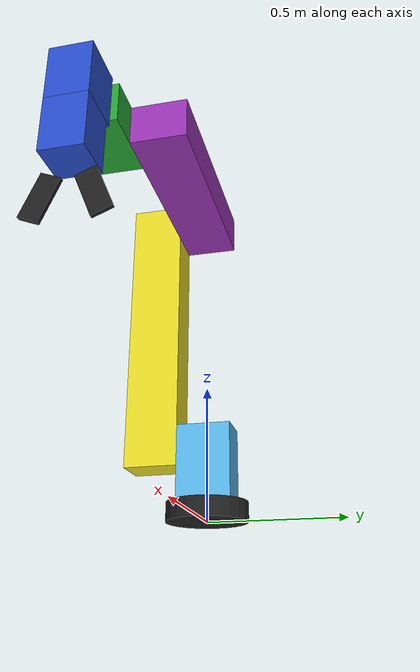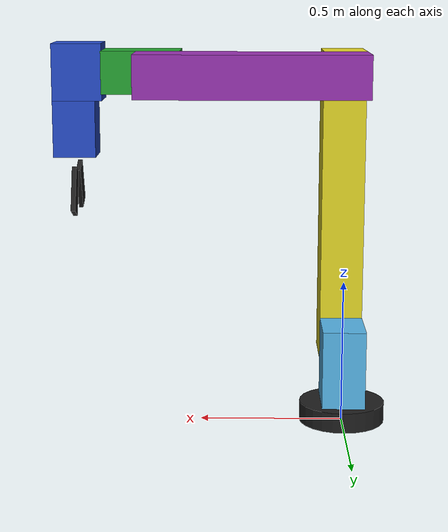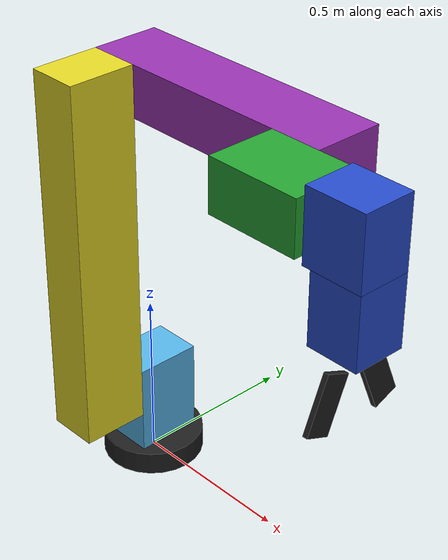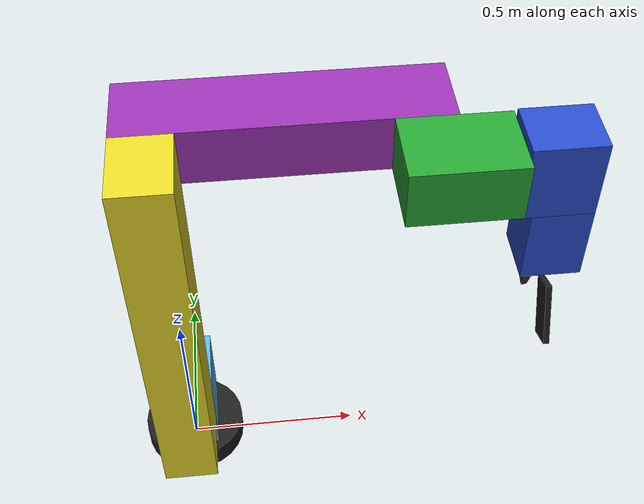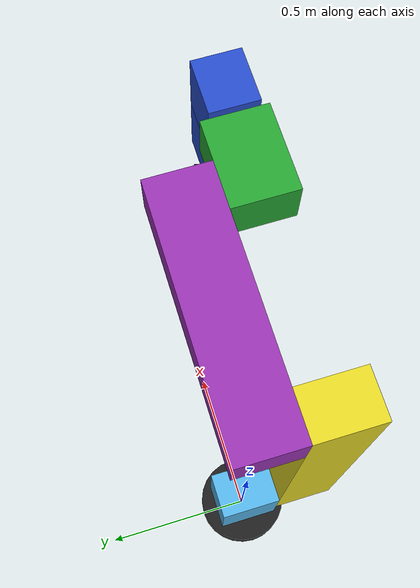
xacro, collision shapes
<?xml version="1.0"?>

<robot xmlns:xacro="http://www.ros.org/wiki/xacro">

    <link name="base_link">
        <visual>
            <geometry>
                <mesh filename="package://6dof_arm_description/meshes/6dof_arm/base_link.stl" scale="1 1 1"/>
            </geometry>
            <origin xyz="0 0 0.04" rpy="0 0 0"/>
            <material name="light_black"/>
        </visual>
        <xacro:base_inertia xyz="0 2.679e-8 0.01026544" rpy="0 0 0" />
        <collision>
            <geometry>
                <cylinder radius="0.15" length="0.07" />
            </geometry>
            <origin xyz="0 0 0.035" rpy="0 0 0"/>
        </collision>
    </link>

    <link name="arm1_link">
        <visual>
            <geometry>
                <mesh filename="package://6dof_arm_description/meshes/6dof_arm/link_1.stl" scale="1 1 1"/>
            </geometry>
            <origin xyz="0 0 0" rpy="0 0 0"/>
            <material name="salmon"/>
        </visual>
        <xacro:arm1_inertia xyz="0 -0.00016159 0.14671717" rpy="0 0 0" />
        <collision>
            <geometry>
                <box size="0.15 0.20 0.275" />
            </geometry>
            <origin xyz="0 0 0.1375" rpy="0 0 0"/>
        </collision>
    </link>

    <link name="arm2_link">
        <visual>
            <geometry>
                <mesh filename="package://6dof_arm_description/meshes/6dof_arm/link_2.stl" scale="1 1 1"/>
            </geometry>
            <origin xyz="0 0 0" rpy="0 0 -${pi/2.0}"/>
            <material name="yellow"/>
        </visual>
        <xacro:arm2_inertia xyz="-0.00008884 0 0.47100021" rpy="0 0 -${pi/2.0}" />
        <collision>
            <geometry>
                <box size="0.15 0.20 1.10" />
            </geometry>
            <origin xyz="0 0 0.475" rpy="0 0 0"/>
        </collision>
    </link>

    <link name="arm3_link">
        <visual>
            <geometry>
                <mesh filename="package://6dof_arm_description/meshes/6dof_arm/link_3.stl" scale="1 1 1"/>
            </geometry>
            <origin xyz="0 0 0" rpy="0 ${pi/2} 0"/>
            <material name="purple"/>
        </visual>
        <xacro:arm3_inertia xyz="0.325 0 -0.00011793" rpy="0 ${pi/2} 0" />
        <collision>
            <geometry>
                <box size="0.15 0.20 0.80" />
            </geometry>
            <origin xyz="0.325 0 0" rpy="0 ${pi/2} 0"/>
        </collision>
    </link>

    <link name="arm4_link">
        <visual>
            <geometry>
                <mesh filename="package://6dof_arm_description/meshes/6dof_arm/link_4.stl" scale="1 1 1"/>
            </geometry>
            <origin xyz="0 0 0" rpy="${pi} 0 0"/>
            <material name="green"/>
        </visual>
        <xacro:arm4_inertia xyz="0 0.0010614 -0.05328286" rpy="${pi} 0 0" />
        <collision>
            <geometry>
                <box size="0.15 0.20 0.275" />
            </geometry>
            <origin xyz="0 0 -0.0625" rpy="0 0 0"/>
        </collision>
    </link>

    <link name="arm5_link">
        <visual>
            <geometry>
                <mesh filename="package://6dof_arm_description/meshes/6dof_arm/link_5.stl" scale="1 1 1"/>
            </geometry>
            <origin xyz="0 0 0" rpy="${pi} 0 ${pi}"/>
            <material name="blue"/>
        </visual>
        <xacro:arm5_inertia xyz="-0.0002301 0 -0.08772699" rpy="${pi} 0 ${pi}" />
        <collision>
            <geometry>
                <box size="0.20 0.15 0.175" />
            </geometry>
            <origin xyz="0 0 -0.0875" rpy="0 0 0"/>
        </collision>
    </link>

    <link name="arm6_link">
        <visual>
            <geometry>
                <mesh filename="package://6dof_arm_description/meshes/6dof_arm/link_6.stl" scale="1 1 1"/>
            </geometry>
            <origin xyz="0 0 0" rpy="0 0 0"/>
            <material name="blue_tifany"/>
        </visual>
        <xacro:arm6_inertia xyz="0 0 0.10531595" rpy="0 0 0" />
        <collision>
            <geometry>
                <box size="0.15 0.15 0.20" />
            </geometry>
            <origin xyz="0 0 0.10" rpy="0 0 0"/>
        </collision>
    </link>

    <link name="gripper1_link">
        <visual>
            <geometry>
                <mesh filename="package://6dof_arm_description/meshes/6dof_arm/gripper.stl" scale="1 1 1"/>
            </geometry>
            <origin xyz="0 0 0" rpy="0 ${pi/2} 0"/>
            <material name="light_black"/>
        </visual>
        <xacro:gripper_inertia xyz="-0.0075 0.090250025 0.027995235" rpy="0 0 0" />
        <collision>
            <geometry>
                <box size="0.015 0.16050005 0.07295455" />
            </geometry>
            <origin xyz="-0.0075 0.090250025 0.027995235" rpy="0 0 0"/>
        </collision>
    </link>

    <link name="gripper2_link">
        <visual>
            <geometry>
                <mesh filename="package://6dof_arm_description/meshes/6dof_arm/gripper.stl" scale="1 1 1"/>
            </geometry>
            <origin xyz="0 0 0" rpy="0 ${pi/2} 0"/>
            <material name="light_black"/>
        </visual>
        <xacro:gripper_inertia xyz="-0.0075 0.090250025 0.027995235" rpy="0 0 0" />
        <collision>
            <geometry>
                <box size="0.015 0.16050005 0.07295455" />
            </geometry>
            <origin xyz="-0.0075 0.090250025 0.027995235" rpy="0 0 0"/>
        </collision>
    </link>

    <link name="world"/>

    <joint name="world_base_joint" type="fixed">
        <origin xyz="0 0 0" rpy="0 0 0"/>
        <parent link="world"/>
        <child link="base_link"/>
    </joint>

    <joint name="base_arm1_joint" type="revolute">
        <parent link="base_link" />
        <child link="arm1_link" />
        <origin xyz ="0 0 0.07" rpy="0 0 0" />
        <axis xyz="0 0 1" />
        <limit lower="0" upper="${pi}" effort="10" velocity="1.0"/>
    </joint>

    <joint name="arm1_arm2_joint" type="revolute">
        <parent link="arm1_link" />
        <child link="arm2_link" />
        <origin xyz ="0 -0.20 0.20" rpy="0 0 0" />
        <axis xyz="0 1 0" />
        <limit lower="0" upper="${pi}" effort="100" velocity="1.0"/>
    </joint>

    <joint name="arm2_arm3_joint" type="revolute">
        <parent link="arm2_link" />
        <child link="arm3_link" />
        <origin xyz ="0 0.20 0.95" rpy="0 0 0" />
        <axis xyz="0 1 0" />
        <limit lower="0" upper="${pi}" effort="10" velocity="1.0"/>
    </joint>

    <joint name="arm3_arm4_joint" type="revolute">
        <parent link="arm3_link" />
        <child link="arm4_link" />
        <origin xyz ="0.65 -0.20 0" rpy="0 -${pi/2} 0" />
        <axis xyz="0 1 0" />
        <limit lower="0" upper="${pi}" effort="10" velocity="1.0"/>
    </joint>

    <joint name="arm4_arm5_joint" type="revolute">
        <parent link="arm4_link" />
        <child link="arm5_link" />
        <origin xyz ="0 0 -0.20" rpy="0 0 ${pi}" />
        <axis xyz="0 0 1" />
        <limit lower="0" upper="${pi}" effort="10" velocity="1.0"/>
    </joint>

    <joint name="arm5_arm6_joint" type="revolute">
        <parent link="arm5_link" />
        <child link="arm6_link" />
        <origin xyz ="0.10 0 -0.1" rpy="0 ${pi/2} 0" />
        <axis xyz="0 0 1" />
        <limit lower="0" upper="${pi}" effort="10" velocity="1.0"/>
    </joint>

    <joint name="arm6_gripper1_joint" type="revolute">
        <parent link="arm6_link" />
        <child link="gripper1_link" />
        <origin xyz ="-0.0075 0.025 0.245" rpy="0 ${pi} 0" />
        <axis xyz="1 0 0" />
        <limit lower="${-pi/4}" upper="${-pi/2}" effort="10" velocity="1.0"/>
    </joint>

    <joint name="arm6_gripper2_joint" type="revolute">
        <parent link="arm6_link" />
        <child link="gripper2_link" />
        <origin xyz ="0.0075 -0.025 0.245" rpy="0 0 0" />
        <axis xyz="1 0 0" />
        <limit lower="${pi/2}" upper="${3/4*pi}" effort="10" velocity="1.0"/>
    </joint>

</robot>
